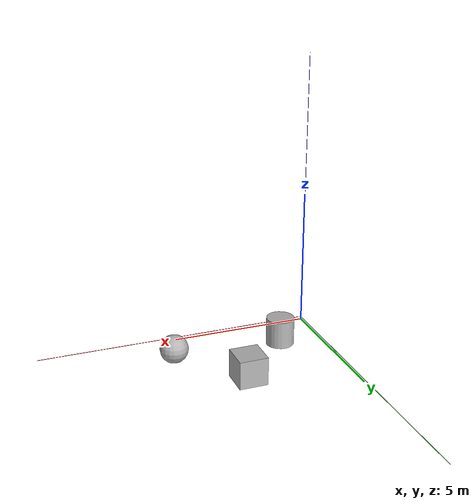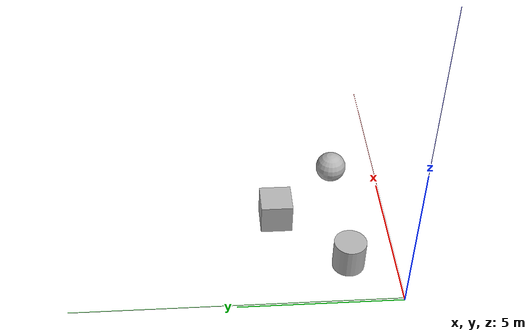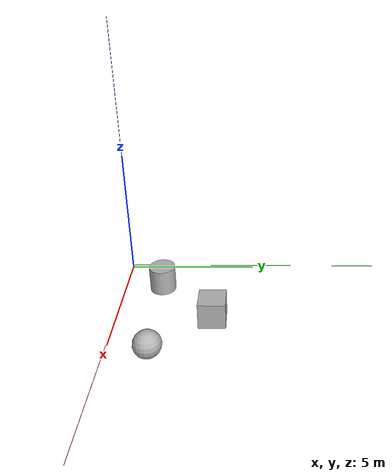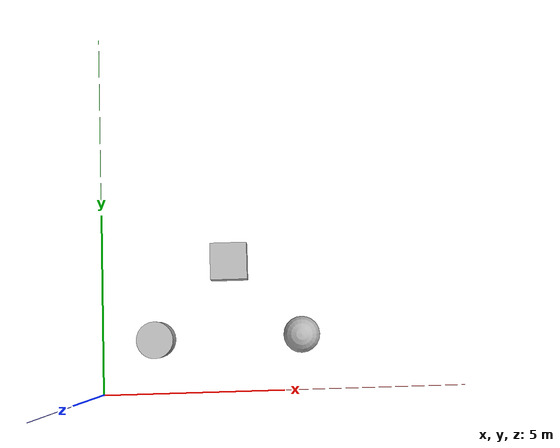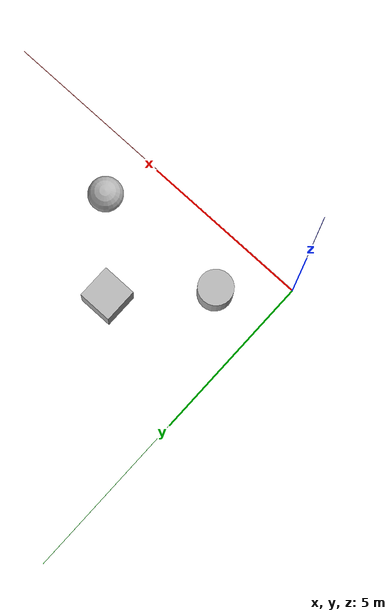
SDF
<sdf version="1.10">
 <world name="iris_runway">
  <physics name="1ms" type="ignore">
   <max_step_size>0.001</max_step_size>
   <real_time_factor>1</real_time_factor>
   <real_time_update_rate>1000</real_time_update_rate>
  </physics>
  <plugin name="gz::sim::systems::Physics" filename="gz-sim-physics-system"/>
  <plugin name="gz::sim::systems::Sensors" filename="gz-sim-sensors-system">
   <render_engine>ogre2</render_engine>
  </plugin>
  <plugin name="gz::sim::systems::UserCommands" filename="gz-sim-user-commands-system"/>
  <plugin name="gz::sim::systems::SceneBroadcaster" filename="gz-sim-scene-broadcaster-system"/>
  <plugin name="gz::sim::systems::Imu" filename="gz-sim-imu-system"/>
  <plugin name="gz::sim::systems::NavSat" filename="gz-sim-navsat-system"/>
  <scene>
   <ambient>1 1 1 1</ambient>
   <background>0.800000012 0.800000012 0.800000012 1</background>
   <shadows>true</shadows>
  </scene>
  <spherical_coordinates>
   <latitude_deg>-35.363261999999999</latitude_deg>
   <longitude_deg>149.16523699999999</longitude_deg>
   <elevation>584</elevation>
   <heading_deg>0</heading_deg>
   <surface_model>EARTH_WGS84</surface_model>
  </spherical_coordinates>
  <gravity>0 0 -9.8000000000000007</gravity>
  <magnetic_field>5.5644999999999998e-06 2.2875799999999999e-05 -4.2388400000000002e-05</magnetic_field>
  <atmosphere type="adiabatic"/>
  <model name="axes">
   <static>true</static>
   <link name="link">
    <visual name="r">
     <cast_shadows>false</cast_shadows>
     <pose>5 0 0.10000000000000001 0 0 0</pose>
     <geometry><box><size>10 0.01 0.01</size></box></geometry>
     <material>
      <ambient>1 0 0 0.800000012</ambient>
      <diffuse>1 0 0 0.800000012</diffuse>
      <emissive>1 0 0 0.800000012</emissive>
      <specular>0.5 0.5 0.5 0.800000012</specular>
     </material>
    </visual>
    <visual name="g">
     <cast_shadows>false</cast_shadows>
     <pose>0 5 0.10000000000000001 0 0 0</pose>
     <geometry><box><size>0.01 10 0.01</size></box></geometry>
     <material>
      <ambient>0 1 0 0.800000012</ambient>
      <diffuse>0 1 0 0.800000012</diffuse>
      <emissive>0 1 0 0.800000012</emissive>
      <specular>0.5 0.5 0.5 0.800000012</specular>
     </material>
    </visual>
    <visual name="b">
     <cast_shadows>false</cast_shadows>
     <pose>0 0 5.0999999999999996 0 0 0</pose>
     <geometry><box><size>0.01 0.01 10</size></box></geometry>
     <material>
      <ambient>0 0 1 0.800000012</ambient>
      <diffuse>0 0 1 0.800000012</diffuse>
      <emissive>0 0 1 0.800000012</emissive>
      <specular>0.5 0.5 0.5 0.800000012</specular>
     </material>
    </visual>
    <sensor name="navsat_sensor" type="navsat"><always_on>true</always_on><update_rate>1</update_rate></sensor>
    <inertial>
     <mass>1</mass>
     <inertia><ixx>1</ixx><ixy>0</ixy><ixz>0</ixz><iyy>1</iyy><iyz>0</iyz><izz>1</izz></inertia>
    </inertial>
   </link>
  </model>
  <model name="cylinder">
   <pose>1.5218749657171455 1.4783243763445637 0.49999942638036005 -4.554960332427875e-20 3.1602895642160531e-21 -1.4127201581832477e-20</pose>
   <link name="cylinder_link">
    <inertial>
     <inertia>
      <ixx>0.14580000000000001</ixx>
      <ixy>0</ixy>
      <ixz>0</ixz>
      <iyy>0.14580000000000001</iyy>
      <iyz>0</iyz>
      <izz>0.125</izz>
     </inertia>
     <mass>1</mass>
    </inertial>
    <collision name="cylinder_collision">
     <geometry><cylinder><radius>0.5</radius><length>1</length></cylinder></geometry>
    </collision>
    <visual name="cylinder_visual">
     <geometry><cylinder><radius>0.5</radius><length>1</length></cylinder></geometry>
     <material>
      <ambient>0.300000012 0.300000012 0.300000012 1</ambient>
      <diffuse>0.699999988 0.699999988 0.699999988 1</diffuse>
      <specular>1 1 1 1</specular>
     </material>
    </visual>
   </link>
   <static>false</static>
  </model>
  <model name="box">
   <pose>3.5684007322203564 3.5654557657730712 0.49999942061812713 2.6456972514035826e-20 3.6125084112944227e-20 6.2566713471726206e-21</pose>
   <link name="box_link">
    <inertial>
     <inertia><ixx>0.16666</ixx><ixy>0</ixy><ixz>0</ixz><iyy>0.16666</iyy><iyz>0</iyz><izz>0.16666</izz></inertia>
     <mass>1</mass>
    </inertial>
    <collision name="box_collision"><geometry><box><size>1 1 1</size></box></geometry></collision>
    <visual name="box_visual">
     <geometry><box><size>1 1 1</size></box></geometry>
     <material>
      <ambient>0.300000012 0.300000012 0.300000012 1</ambient>
      <diffuse>0.699999988 0.699999988 0.699999988 1</diffuse>
      <specular>1 1 1 1</specular>
     </material>
    </visual>
   </link>
   <static>false</static>
  </model>
  <model name="sphere">
   <pose>5.5152247324220314 1.5190568051927169 0.499999999902001 -7.4608106329777047e-19 -7.4608106329777023e-20 2.7831847650576581e-38</pose>
   <link name="sphere_link">
    <inertial>
     <inertia>
      <ixx>0.10000000000000001</ixx>
      <ixy>0</ixy>
      <ixz>0</ixz>
      <iyy>0.10000000000000001</iyy>
      <iyz>0</iyz>
      <izz>0.10000000000000001</izz>
     </inertia>
     <mass>1</mass>
    </inertial>
    <collision name="sphere_collision"><geometry><sphere><radius>0.5</radius></sphere></geometry></collision>
    <visual name="sphere_visual">
     <geometry><sphere><radius>0.5</radius></sphere></geometry>
     <material>
      <ambient>0.300000012 0.300000012 0.300000012 1</ambient>
      <diffuse>0.699999988 0.699999988 0.699999988 1</diffuse>
      <specular>1 1 1 1</specular>
     </material>
    </visual>
   </link>
   <static>false</static>
  </model>
  <light name="sun" type="directional">
   <pose>0 0 10 0 0 0</pose>
   <intensity>1</intensity>
   <direction>-0.5 0.10000000000000001 -0.90000000000000002</direction>
   <diffuse>0.800000012 0.800000012 0.800000012 1</diffuse>
   <specular>0.800000012 0.800000012 0.800000012 1</specular>
   <attenuation>
    <range>1000</range>
    <linear>0.0099999997764825821</linear>
    <constant>0.89999997615814209</constant>
    <quadratic>0.0010000000474974513</quadratic>
   </attenuation>
   <spot><inner_angle>0</inner_angle><outer_angle>0</outer_angle><falloff>0</falloff></spot>
  </light>
 </world>
</sdf>
